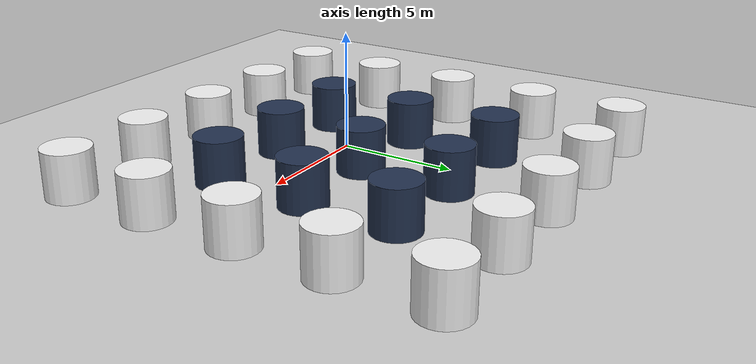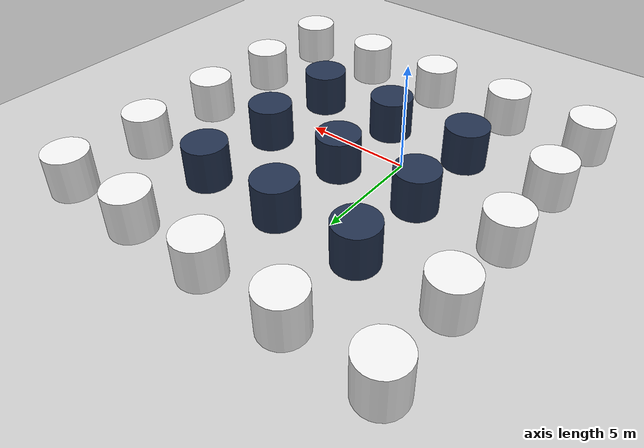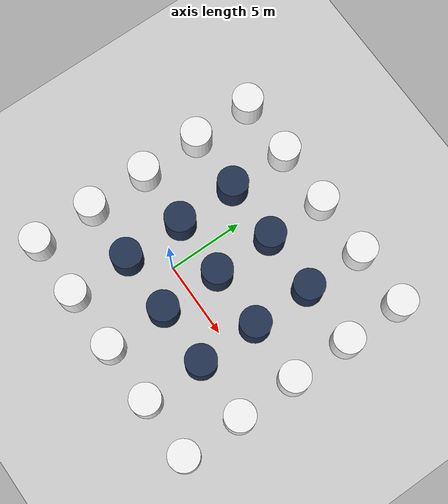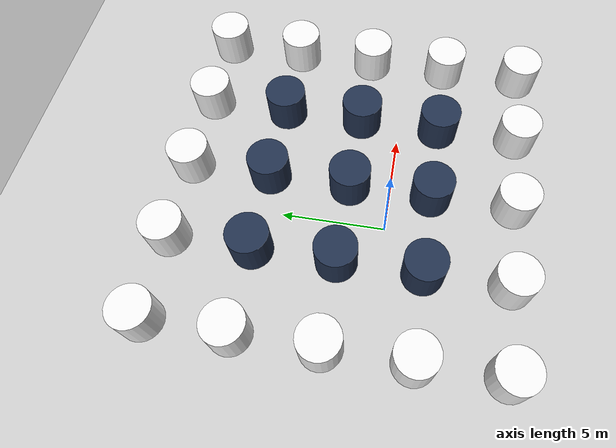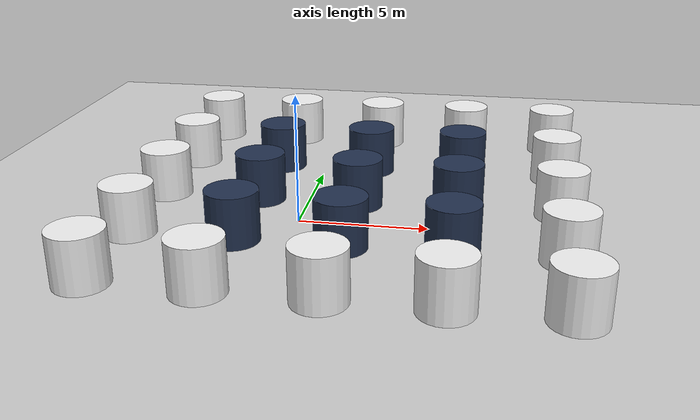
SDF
<?xml version="1.0" ?>
<sdf version="1.6">
  <world name="ros_logo">
    <!-- Ground plane -->
    <include>
      <uri>model://ground_plane</uri>
    </include>

    <!-- Luz principal -->
    <include>
      <uri>model://sun</uri>
    </include>

    <!-- NUMERO 1 -->
    <!-- BLOQUE DERECHO-->
    <model name="circle_1">
      <static>true</static>
      <pose>2 2 1 0 0 0</pose>
      <link name="link"><collision name="wall"><laser_retro>255</laser_retro>
        <geometry><cylinder><radius>1</radius><length>2.0</length></cylinder></geometry></collision>
      <visual name="vis"><geometry><cylinder><radius>1</radius><length>2.0</length></cylinder></geometry>
      <material><ambient>0.133 0.192 0.306 1</ambient><diffuse>0.133 0.192 0.306 1</diffuse></material></visual></link>
    </model>

    <model name="circle_2">
      <static>true</static>
      <pose>2 -2 1 0 0 0</pose>
      <link name="link"><collision name="wall"><laser_retro>255</laser_retro>
        <geometry><cylinder><radius>1</radius><length>2.0</length></cylinder></geometry></collision>
      <visual name="vis"><geometry><cylinder><radius>1</radius><length>2.0</length></cylinder></geometry>
      <material><ambient>0.133 0.192 0.306 1</ambient><diffuse>0.133 0.192 0.306 1</diffuse></material></visual></link>
    </model>

    <model name="circle_3">
      <static>true</static>
      <pose>-2 -2 1 0 0 0</pose>
      <link name="link"><collision name="wall"><laser_retro>255</laser_retro>
        <geometry><cylinder><radius>1</radius><length>2.0</length></cylinder></geometry></collision>
      <visual name="vis"><geometry><cylinder><radius>1</radius><length>2.0</length></cylinder></geometry>
      <material><ambient>0.133 0.192 0.306 1</ambient><diffuse>0.133 0.192 0.306 1</diffuse></material></visual></link>
    </model>

    <model name="circle_4">
      <static>true</static>
      <pose>-2 2 1 0 0 0</pose>
      <link name="link"><collision name="wall"><laser_retro>255</laser_retro>
        <geometry><cylinder><radius>1</radius><length>2.0</length></cylinder></geometry></collision>
      <visual name="vis"><geometry><cylinder><radius>1</radius><length>2.0</length></cylinder></geometry>
      <material><ambient>0.133 0.192 0.306 1</ambient><diffuse>0.133 0.192 0.306 1</diffuse></material></visual></link>
    </model>

    <model name="circle_5">
      <static>true</static>
      <pose>-6 2 1 0 0 0</pose>
      <link name="link"><collision name="wall"><laser_retro>0</laser_retro>
        <geometry><cylinder><radius>1</radius><length>2.0</length></cylinder></geometry></collision>
      <visual name="vis"><geometry><cylinder><radius>1</radius><length>2.0</length></cylinder></geometry>
      <material><ambient>0.95 0.95 0.95 1</ambient><diffuse>0.95 0.95 0.95 1</diffuse></material></visual></link>
    </model>

    <model name="circle_6">
      <static>true</static>
      <pose>-6 -2 1 0 0 0</pose>
      <link name="link"><collision name="wall"><laser_retro>0</laser_retro>
        <geometry><cylinder><radius>1</radius><length>2.0</length></cylinder></geometry></collision>
      <visual name="vis"><geometry><cylinder><radius>1</radius><length>2.0</length></cylinder></geometry>
      <material><ambient>0.95 0.95 0.95 1</ambient><diffuse>0.95 0.95 0.95 1</diffuse></material></visual></link>
    </model>

    <model name="circle_7">
      <static>true</static>
      <pose>-6 -6 1 0 0 0</pose>
      <link name="link"><collision name="wall"><laser_retro>0</laser_retro>
        <geometry><cylinder><radius>1</radius><length>2.0</length></cylinder></geometry></collision>
      <visual name="vis"><geometry><cylinder><radius>1</radius><length>2.0</length></cylinder></geometry>
      <material><ambient>0.95 0.95 0.95 1</ambient><diffuse>0.95 0.95 0.95 1</diffuse></material></visual></link>
    </model>

    <model name="circle_8">
      <static>true</static>
      <pose>-2 -6 1 0 0 0</pose>
      <link name="link"><collision name="wall"><laser_retro>0</laser_retro>
        <geometry><cylinder><radius>1</radius><length>2.0</length></cylinder></geometry></collision>
      <visual name="vis"><geometry><cylinder><radius>1</radius><length>2.0</length></cylinder></geometry>
      <material><ambient>0.95 0.95 0.95 1</ambient><diffuse>0.95 0.95 0.95 1</diffuse></material></visual></link>
    </model>

    <model name="circle_9">
      <static>true</static>
      <pose>2 -6 1 0 0 0</pose>
      <link name="link"><collision name="wall"><laser_retro>0</laser_retro>
        <geometry><cylinder><radius>1</radius><length>2.0</length></cylinder></geometry></collision>
      <visual name="vis"><geometry><cylinder><radius>1</radius><length>2.0</length></cylinder></geometry>
      <material><ambient>0.95 0.95 0.95 1</ambient><diffuse>0.95 0.95 0.95 1</diffuse></material></visual></link>
    </model>

    <model name="circle_10">
      <static>true</static>
      <pose>6 -6 1 0 0 0</pose>
      <link name="link"><collision name="wall"><laser_retro>0</laser_retro>
        <geometry><cylinder><radius>1</radius><length>2.0</length></cylinder></geometry></collision>
      <visual name="vis"><geometry><cylinder><radius>1</radius><length>2.0</length></cylinder></geometry>
      <material><ambient>0.95 0.95 0.95 1</ambient><diffuse>0.95 0.95 0.95 1</diffuse></material></visual></link>
    </model>

    <model name="circle_11">
      <static>true</static>
      <pose>6 -2 1 0 0 0</pose>
      <link name="link"><collision name="wall"><laser_retro>255</laser_retro>
        <geometry><cylinder><radius>1</radius><length>2.0</length></cylinder></geometry></collision>
      <visual name="vis"><geometry><cylinder><radius>1</radius><length>2.0</length></cylinder></geometry>
      <material><ambient>0.133 0.192 0.306 1</ambient><diffuse>0.133 0.192 0.306 1</diffuse></material></visual></link>
    </model>

    <model name="circle_12">
      <static>true</static>
      <pose>6 2 1 0 0 0</pose>
      <link name="link"><collision name="wall"><laser_retro>255</laser_retro>
        <geometry><cylinder><radius>1</radius><length>2.0</length></cylinder></geometry></collision>
      <visual name="vis"><geometry><cylinder><radius>1</radius><length>2.0</length></cylinder></geometry>
      <material><ambient>0.133 0.192 0.306 1</ambient><diffuse>0.133 0.192 0.306 1</diffuse></material></visual></link>
    </model>

    <model name="circle_13">
      <static>true</static>
      <pose>6 6 1 0 0 0</pose>
      <link name="link"><collision name="wall"><laser_retro>255</laser_retro>
        <geometry><cylinder><radius>1</radius><length>2.0</length></cylinder></geometry></collision>
      <visual name="vis"><geometry><cylinder><radius>1</radius><length>2.0</length></cylinder></geometry>
      <material><ambient>0.133 0.192 0.306 1</ambient><diffuse>0.133 0.192 0.306 1</diffuse></material></visual></link>
    </model>

    <model name="circle_14">
      <static>true</static>
      <pose>2 6 1 0 0 0</pose>
      <link name="link"><collision name="wall"><laser_retro>255</laser_retro>
        <geometry><cylinder><radius>1</radius><length>2.0</length></cylinder></geometry></collision>
      <visual name="vis"><geometry><cylinder><radius>1</radius><length>2.0</length></cylinder></geometry>
      <material><ambient>0.133 0.192 0.306 1</ambient><diffuse>0.133 0.192 0.306 1</diffuse></material></visual></link>
    </model>

    <model name="circle_15">
      <static>true</static>
      <pose>-2 6 1 0 0 0</pose>
      <link name="link"><collision name="wall"><laser_retro>255</laser_retro>
        <geometry><cylinder><radius>1</radius><length>2.0</length></cylinder></geometry></collision>
      <visual name="vis"><geometry><cylinder><radius>1</radius><length>2.0</length></cylinder></geometry>
      <material><ambient>0.133 0.192 0.306 1</ambient><diffuse>0.133 0.192 0.306 1</diffuse></material></visual></link>
    </model>

    <model name="circle_16">
      <static>true</static>
      <pose>-6 6 1 0 0 0</pose>
      <link name="link"><collision name="wall"><laser_retro>0</laser_retro>
        <geometry><cylinder><radius>1</radius><length>2.0</length></cylinder></geometry></collision>
      <visual name="vis"><geometry><cylinder><radius>1</radius><length>2.0</length></cylinder></geometry>
      <material><ambient>0.95 0.95 0.95 1</ambient><diffuse>0.95 0.95 0.95 1</diffuse></material></visual></link>
    </model>

    <model name="circle_17">
      <static>true</static>
      <pose>-6 10 1 0 0 0</pose>
      <link name="link"><collision name="wall"><laser_retro>0</laser_retro>
        <geometry><cylinder><radius>1</radius><length>2.0</length></cylinder></geometry></collision>
      <visual name="vis"><geometry><cylinder><radius>1</radius><length>2.0</length></cylinder></geometry>
      <material><ambient>0.95 0.95 0.95 1</ambient><diffuse>0.95 0.95 0.95 1</diffuse></material></visual></link>
    </model>

    <model name="circle_18">
      <static>true</static>
      <pose>-2 10 1 0 0 0</pose>
      <link name="link"><collision name="wall"><laser_retro>0</laser_retro>
        <geometry><cylinder><radius>1</radius><length>2.0</length></cylinder></geometry></collision>
      <visual name="vis"><geometry><cylinder><radius>1</radius><length>2.0</length></cylinder></geometry>
      <material><ambient>0.95 0.95 0.95 1</ambient><diffuse>0.95 0.95 0.95 1</diffuse></material></visual></link>
    </model>

     <model name="circle_19">
      <static>true</static>
      <pose>2 10 1 0 0 0</pose>
      <link name="link"><collision name="wall"><laser_retro>0</laser_retro>
        <geometry><cylinder><radius>1</radius><length>2.0</length></cylinder></geometry></collision>
      <visual name="vis"><geometry><cylinder><radius>1</radius><length>2.0</length></cylinder></geometry>
      <material><ambient>0.95 0.95 0.95 1</ambient><diffuse>0.95 0.95 0.95 1</diffuse></material></visual></link>
    </model>

     <model name="circle_20">
      <static>true</static>
      <pose>6 10 1 0 0 0</pose>
      <link name="link"><collision name="wall"><laser_retro>0</laser_retro>
        <geometry><cylinder><radius>1</radius><length>2.0</length></cylinder></geometry></collision>
      <visual name="vis"><geometry><cylinder><radius>1</radius><length>2.0</length></cylinder></geometry>
      <material><ambient>0.95 0.95 0.95 1</ambient><diffuse>0.95 0.95 0.95 1</diffuse></material></visual></link>
    </model>

     <model name="circle_21">
      <static>true</static>
      <pose>10 10 1 0 0 0</pose>
      <link name="link"><collision name="wall"><laser_retro>0</laser_retro>
        <geometry><cylinder><radius>1</radius><length>2.0</length></cylinder></geometry></collision>
      <visual name="vis"><geometry><cylinder><radius>1</radius><length>2.0</length></cylinder></geometry>
      <material><ambient>0.95 0.95 0.95 1</ambient><diffuse>0.95 0.95 0.95 1</diffuse></material></visual></link>
    </model>

    <model name="circle_22">
      <static>true</static>
      <pose>10 6 1 0 0 0</pose>
      <link name="link"><collision name="wall"><laser_retro>0</laser_retro>
        <geometry><cylinder><radius>1</radius><length>2.0</length></cylinder></geometry></collision>
      <visual name="vis"><geometry><cylinder><radius>1</radius><length>2.0</length></cylinder></geometry>
      <material><ambient>0.95 0.95 0.95 1</ambient><diffuse>0.95 0.95 0.95 1</diffuse></material></visual></link>
    </model>

    <model name="circle_23">
      <static>true</static>
      <pose>10 2 1 0 0 0</pose>
      <link name="link"><collision name="wall"><laser_retro>0</laser_retro>
        <geometry><cylinder><radius>1</radius><length>2.0</length></cylinder></geometry></collision>
      <visual name="vis"><geometry><cylinder><radius>1</radius><length>2.0</length></cylinder></geometry>
      <material><ambient>0.95 0.95 0.95 1</ambient><diffuse>0.95 0.95 0.95 1</diffuse></material></visual></link>
    </model>

    <model name="circle_24">
      <static>true</static>
      <pose>10 -2 1 0 0 0</pose>
      <link name="link"><collision name="wall"><laser_retro>0</laser_retro>
        <geometry><cylinder><radius>1</radius><length>2.0</length></cylinder></geometry></collision>
      <visual name="vis"><geometry><cylinder><radius>1</radius><length>2.0</length></cylinder></geometry>
      <material><ambient>0.95 0.95 0.95 1</ambient><diffuse>0.95 0.95 0.95 1</diffuse></material></visual></link>
    </model>

    <model name="circle_25">
      <static>true</static>
      <pose>10 -6 1 0 0 0</pose>
      <link name="link"><collision name="wall"><laser_retro>0</laser_retro>
        <geometry><cylinder><radius>1</radius><length>2.0</length></cylinder></geometry></collision>
      <visual name="vis"><geometry><cylinder><radius>1</radius><length>2.0</length></cylinder></geometry>
      <material><ambient>0.95 0.95 0.95 1</ambient><diffuse>0.95 0.95 0.95 1</diffuse></material></visual></link>
    </model>

    <gui fullscreen='0'>
      <camera name='user_camera'>
        <pose>0.05 -0.05 7.2048 0 1.570796 0</pose>
        <view_controller>orbit</view_controller>
        <projection_type>orthographic</projection_type>
      </camera>
    </gui>

    </world>
</sdf>
